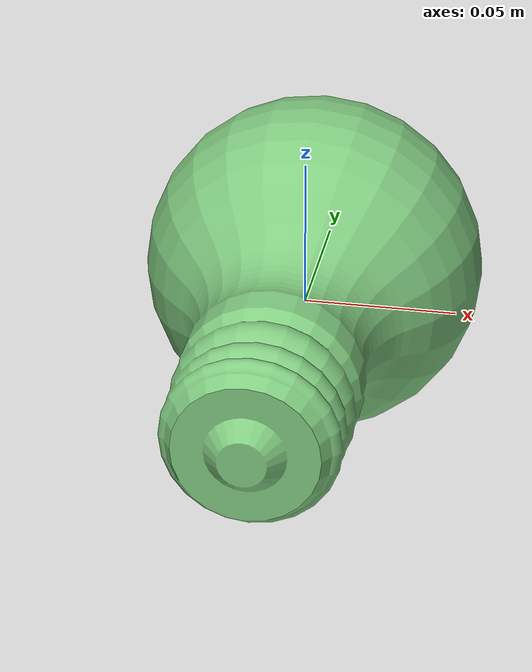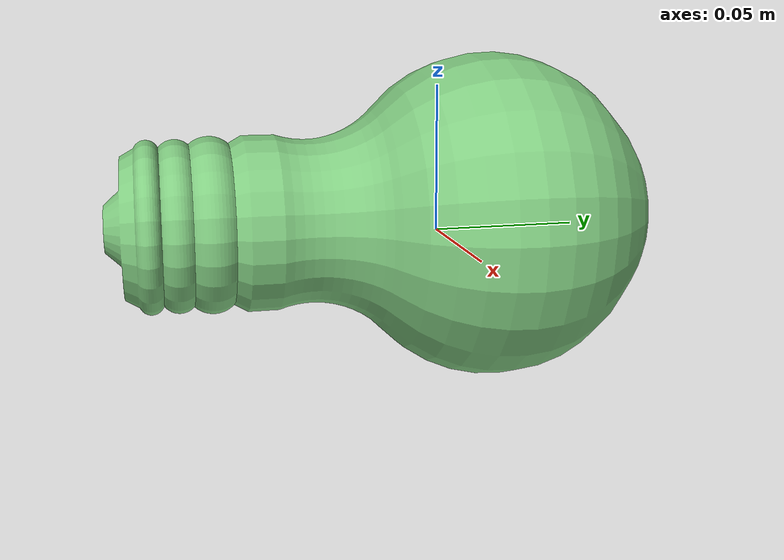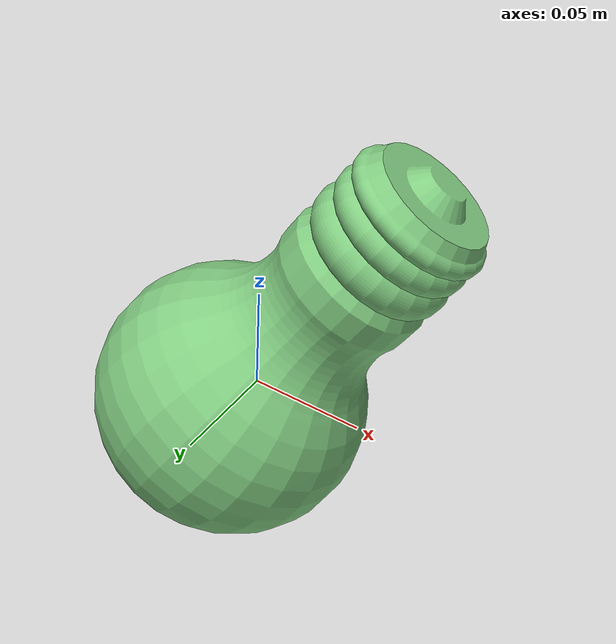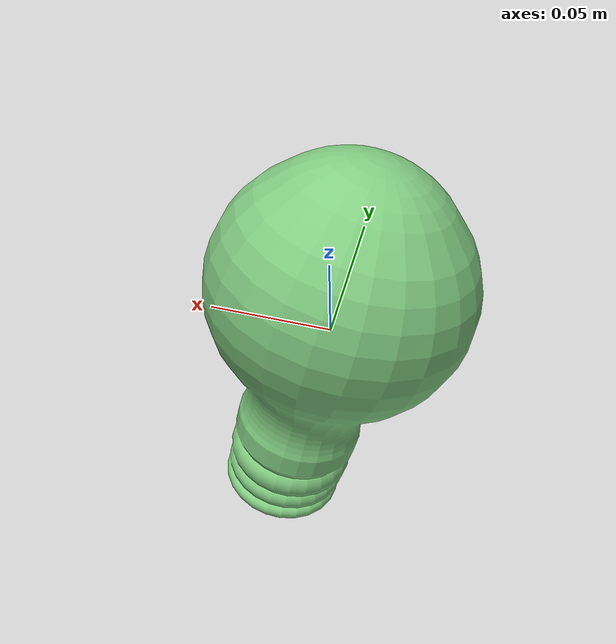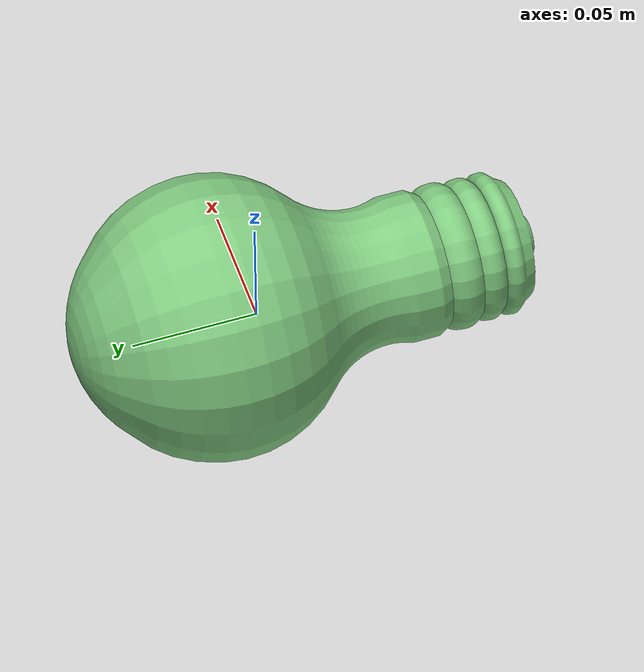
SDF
<sdf version="1.6">
  <model name="lightbulb1_0">
    <link name="link">
      <pose frame="">-0 0 0.005 0 -0 0</pose>
      <inertial>
        <mass>0.5</mass>
        <inertia>
          <ixx>0.0003187626908886667</ixx>
          <ixy>0</ixy>
          <ixz>0</ixz>
          <iyy>0.0003187626908886667</iyy>
          <iyz>0</iyz>
          <izz>0.0001697983230828</izz>
        </inertia>
        <pose frame="">-9.699999999987066e-07 -0.007521689999999998 5.399999999998128e-07 1.57 0 3.14</pose>
      </inertial>
      <self_collide>0</self_collide>
      <kinematic>0</kinematic>
      <gravity>1</gravity>
      <visual name="visual">
        <geometry>
          <mesh>
            <uri>/home/zisu/simulator/siemens_challenge/sim_world/toolbox/lightbulb1_0.dae</uri>
          </mesh>
        </geometry>
        <pose frame="">0 0 0 0 -0 0</pose>
        <transparency>0</transparency>
        <cast_shadows>0</cast_shadows>
      </visual>
      <collision name="collision">
        <laser_retro>0</laser_retro>
        <max_contacts>10</max_contacts>
        <pose frame="">-9.699999999987066e-07 -0.007521689999999998 5.399999999998128e-07 1.57 0 3.14</pose>
        <geometry>
          <box>
            <size>0.04513956 0.04513956 0.07491812</size>
          </box>
        </geometry>
        <surface>
          <friction>
            <ode>
              <mu>1</mu>
              <mu2>1</mu2>
              <fdir1>0 0 0</fdir1>
              <slip1>0</slip1>
              <slip2>0</slip2>
            </ode>
            <torsional>
              <coefficient>1</coefficient>
              <patch_radius>0</patch_radius>
              <surface_radius>0.05</surface_radius>
              <use_patch_radius>0</use_patch_radius>
              <ode>
                <slip>0</slip>
              </ode>
            </torsional>
          </friction>
          <bounce>
            <restitution_coefficient>0</restitution_coefficient>
            <threshold>1e+06</threshold>
          </bounce>
          <contact>
            <collide_without_contact>0</collide_without_contact>
            <collide_without_contact_bitmask>1</collide_without_contact_bitmask>
            <collide_bitmask>1</collide_bitmask>
            <ode>
              <soft_cfm>0</soft_cfm>
              <soft_erp>0.2</soft_erp>
              <kp>100000</kp>
              <kd>1</kd>
              <max_vel>1</max_vel>
              <min_depth>0.001</min_depth>
            </ode>
            <bullet>
              <split_impulse>1</split_impulse>
              <split_impulse_penetration_threshold>-0.01</split_impulse_penetration_threshold>
              <soft_cfm>0</soft_cfm>
              <soft_erp>0.2</soft_erp>
              <kp>100000</kp>
              <kd>1</kd>
            </bullet>
          </contact>
        </surface>
      </collision>
    </link>
    <static>0</static>
    <allow_auto_disable>1</allow_auto_disable>
  </model>
</sdf>
